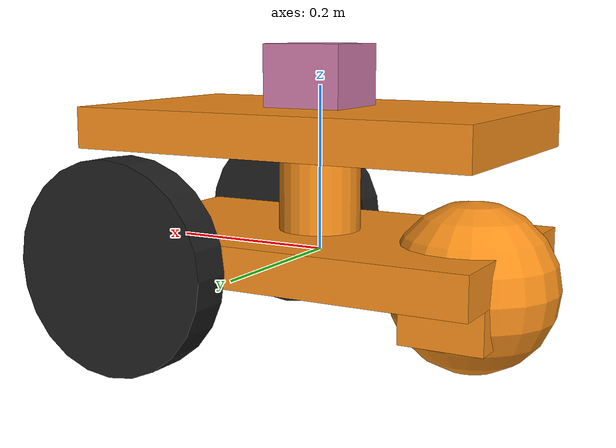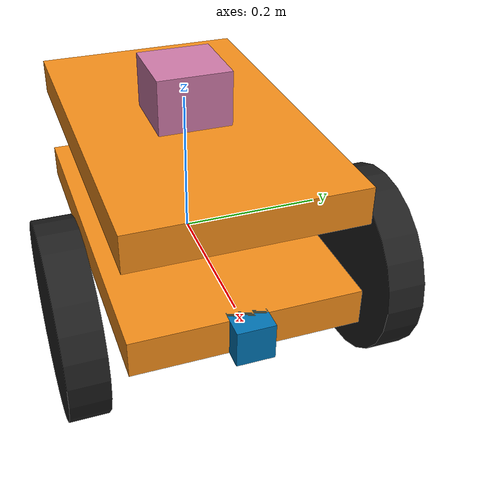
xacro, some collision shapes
<robot name="my_robot" xmlns:xacro="http://www.ros.org/wiki/xacro">

  <xacro:include filename="$(find my_robot)/urdf/my_robot.gazebo" />

  <gazebo reference="chassis">
        <material>Gazebo/Orange</material>
  </gazebo>

  <gazebo reference="left_wheel">
        <material>Gazebo/FlatBlack</material>
  </gazebo>
  <gazebo reference="right_wheel">
        <material>Gazebo/FlatBlack</material>
  </gazebo>
  <gazebo reference="right_wheel">
        <material>Gazebo/FlatBlack</material>
  </gazebo>

  <link name="robot_footprint"></link>

  <joint name="robot_footprint_joint" type="fixed">
    <origin xyz="0 0 0" rpy="0 0 0" />
    <parent link="robot_footprint"/>
    <child link="chassis" />
  </joint>

  <link name='chassis'>
    <pose>0 0 0.1 0 0 0</pose>

    <inertial>
      <mass value="15.0"/>
      <origin xyz="0.0 0 0" rpy=" 0 0 0"/>
      <inertia
          ixx="0.1" ixy="0" ixz="0"
          iyy="0.1" iyz="0"
          izz="0.1"
      />
    </inertial>

    <collision name='collision'>
      <origin xyz="0 0 0" rpy=" 0 0 0"/>
      <geometry>
        <box size=".5 .3 .05"/>
      </geometry>
    </collision>

    <visual name='chassis_visual'>
      <origin xyz="0 0 0" rpy=" 0 0 0"/>
      <geometry>
        <box size=".5 .3 .05"/>
      </geometry>
    </visual>

    <collision name='back_bar_collision'>
      <origin xyz="-0.2 0 -0.05" rpy=" 0 0 0"/>
      <geometry>
        <box size=".1 .2 .05"/>
      </geometry>
    </collision>

    <visual name='back_bar_visual'>
      <origin xyz="-0.2 0 -0.05" rpy=" 0 0 0"/>
      <geometry>
        <box size=".1 .2 0.05"/>
      </geometry>
    </visual>

    <collision name='first_level_collision'>
      <origin xyz="0 0 0.15" rpy=" 0 0 0"/>
      <geometry>
        <box size=".5 .3 .05"/>
      </geometry>
    </collision>

    <visual name='first_level_visual'>
      <origin xyz="0 0 0.15" rpy=" 0 0 0"/>
      <geometry>
        <box size=".5 .3 .05"/>
      </geometry>
    </visual>

    <collision name='central_bar_collision'>
      <origin xyz="0 0 0.1" rpy=" 0 0 0"/>
      <geometry>
        <cylinder radius="0.05" length="0.15"/>
      </geometry>
    </collision>

    <visual name='central_bar_visual'>
      <origin xyz="0 0 0.1" rpy=" 0 0 0"/>
      <geometry>
        <cylinder radius="0.05" length="0.15"/>
      </geometry>
    </visual>

    <collision name='back_wheel_collision'>
      <origin xyz="-0.20 0 -0.025" rpy=" 0 0 0"/>
      <geometry>
        <sphere radius="0.1"/>
      </geometry>
    </collision>

    <visual name='back_wheel_visual'>
      <origin xyz="-0.2 0 -0.025" rpy=" 0 0 0"/>
      <geometry>
        <sphere radius="0.1"/>
      </geometry>
    </visual>

  </link>

  <link name='left_wheel'>
     <inertial>
       <mass value="5.0"/>
       <origin xyz="0.0 0 0" rpy=" 0 1.5707 1.5707"/>
       <inertia
           ixx="0.1" ixy="0" ixz="0"
           iyy="0.1" iyz="0"
           izz="0.1"
       />
     </inertial>

     <collision name='left_wheel_collision'>
       <origin xyz="0 0 0" rpy=" 0 1.5707 1.5707"/>
       <geometry>
         <cylinder radius="0.125" length="0.05"/>
       </geometry>
     </collision>

     <visual name='left_wheel_visual'>
       <origin xyz="0 0 0" rpy=" 0 1.5707 1.5707"/>
       <geometry>
         <cylinder radius="0.125" length="0.05"/>
       </geometry>
     </visual>
   </link>

   <link name='right_wheel'>
     <inertial>
       <mass value="5.0"/>
       <origin xyz="0 0 0" rpy=" 0 1.5707 1.5707"/>
       <inertia
           ixx="0.1" ixy="0" ixz="0"
           iyy="0.1" iyz="0"
           izz="0.1"
       />
     </inertial>

     <collision name='right_wheel_collision'>
       <origin xyz="0 0 0" rpy=" 0 1.5707 1.5707"/>
       <geometry>
         <cylinder radius="0.125" length="0.05"/>
       </geometry>
     </collision>

     <visual name='right_wheel_visual'>
       <origin xyz="0 0 0" rpy=" 0 1.5707 1.5707"/>
       <geometry>
         <cylinder radius="0.125" length="0.05"/>
       </geometry>
     </visual>
   </link>

   <link name='camera'>
     <inertial>
       <mass value="0.1"/>
       <origin xyz="0 0 0" rpy=" 0 0 0"/>
       <inertia
           ixx="1e-6" ixy="0" ixz="0"
           iyy="1e-6" iyz="0"
           izz="1e-6"
       />
     </inertial>

     <collision name='camera_collision'>
       <origin xyz="0 0 0" rpy=" 0 0 0"/>
       <geometry>
         <box size=".05 .05 .05"/>
       </geometry>
     </collision>

     <visual name='camera_visual'>
       <origin xyz="0 0 0" rpy=" 0 0 0"/>
       <geometry>
         <box size=".05 .05 .05"/>
       </geometry>
     </visual>
   </link>

    <link name="camera_link_optical">
  </link>

   <link name='hokuyo'>
     <inertial>
       <mass value="1e-5"/>
       <origin xyz="0 0 0" rpy=" 0 0 0"/>
       <inertia
           ixx="1e-6" ixy="0" ixz="0"
           iyy="1e-6" iyz="0"
           izz="1e-6"
       />
     </inertial>

     <collision name='hokuyo_collision'>
       <origin xyz="0 0 0" rpy=" 0 0 0"/>
       <geometry>
         <box size=".1 .1 .1"/>
       </geometry>
     </collision>

     <visual name='hokuyo_visual'>
       <origin xyz="0 0 0" rpy=" 0 0 0"/>
       <geometry>
         <mesh filename="package://my_robot/meshes/hokuyo.dae"/>
       </geometry>
     </visual>
   </link>

  <joint type="continuous" name="left_wheel_hinge">
     <origin xyz="0.15 0.2 0" rpy="0 0 0"/>
     <child link="left_wheel"/>
     <parent link="chassis"/>
     <axis xyz="0 1 0" rpy="0 0 0"/>
     <limit effort="10000" velocity="1000"/>
     <dynamics damping="1.0" friction="1.0"/>
   </joint>

   <joint type="continuous" name="right_wheel_hinge">
     <origin xyz="0.15 -0.2 0" rpy="0 0 0"/>
     <child link="right_wheel"/>
     <parent link="chassis"/>
     <axis xyz="0 1 0" rpy="0 0 0"/>
     <limit effort="10000" velocity="1000"/>
     <dynamics damping="1.0" friction="1.0"/>
   </joint>

   <joint type="fixed" name="camera_joint">
     <origin xyz="0.25 0 0" rpy="0 0 0"/>
     <child link="camera"/>
     <parent link="chassis"/>
     <axis xyz="0 1 0" rpy="0 0 0"/>
   </joint>

   <joint type="fixed" name="hokuyo_joint">
     <origin xyz="0.0 0 0.2" rpy="0 0 0"/>
     <child link="hokuyo"/>
     <parent link="chassis"/>
     <axis xyz="0 1 0" rpy="0 0 0"/>
   </joint>

  <joint name="camera_optical_joint" type="fixed">
    <origin xyz="0 0 0" rpy="-1.5707 0 -1.5707"/>
    <parent link="camera"/>
    <child link="camera_link_optical"/>
  </joint>

</robot>
